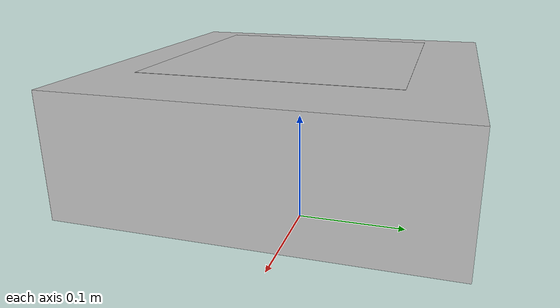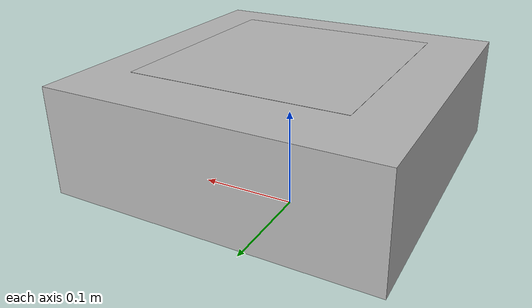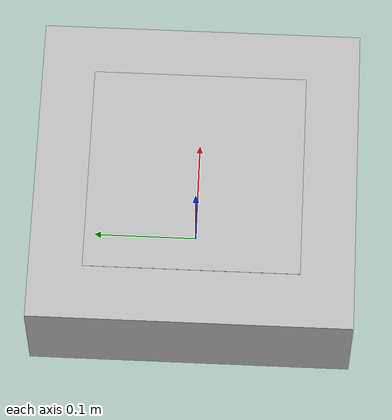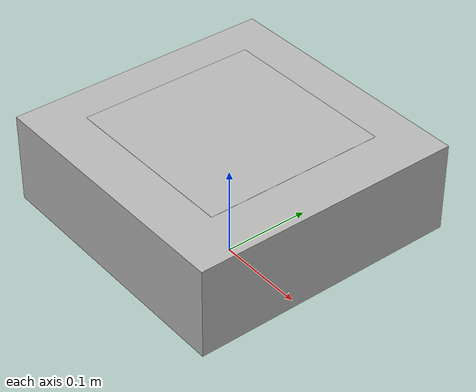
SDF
<?xml version="1.0" ?>
<sdf version="1.6">
  <model name="mini_drone">
    <pose>0 0 0.1 0 0 0</pose>
    <link name="base_link">
      <inertial>
        <mass>0.5</mass>
        <inertia>
          <ixx>0.005</ixx>
          <iyy>0.005</iyy>
          <izz>0.01</izz>
        </inertia>
      </inertial>

      <!-- Collision geometry so the drone interacts with the ground physics -->
      <collision name="collision">
        <geometry>
          <box>
            <size>0.3 0.3 0.1</size>
          </box>
        </geometry>
      </collision>

      <!-- Visual geometry representing the drone body in Gazebo -->
      <visual name="visual">
        <geometry>
          <box>
            <size>0.3 0.3 0.1</size>
          </box>
        </geometry>
      </visual>

      <!-- Top Marker Visual using a flat plane with the ArUco texture -->
      <visual name="aruco_marker_visual">
        <pose>0 0 0.055 0 0 0</pose>
        <geometry>
          <plane>
            <normal>0 0 1</normal>
            <size>0.2 0.2</size>
          </plane>
        </geometry>
        <material>
          <script>
            <uri>model://mini_drone/materials/scripts</uri>
            <uri>model://mini_drone/materials/textures</uri>
            <name>DroneArUcoMarker</name>
          </script>
          <lighting>false</lighting>
        </material>
        <cast_shadows>false</cast_shadows>
      </visual>
    </link>

    <!-- Planar Move Plugin to directly accept /cmd_vel velocity commands -->
    <!-- Odometry here is GROUND TRUTH for debugging/comparison only -->
    <!-- The controller uses /vision/estimated_position from the ArUco node instead -->
    <plugin name="drone_control" filename="libgazebo_ros_planar_move.so">
      <command_topic>/cmd_vel</command_topic>
      <odometry_topic>/drone/ground_truth_odom</odometry_topic>
      <odometry_frame>odom</odometry_frame>
      <robot_base_frame>base_link</robot_base_frame>
      <publish_odom>true</publish_odom>
      <publish_odom_tf>true</publish_odom_tf>
      <init_box_x>0</init_box_x>
      <init_box_y>0</init_box_y>
    </plugin>
  </model>
</sdf>
